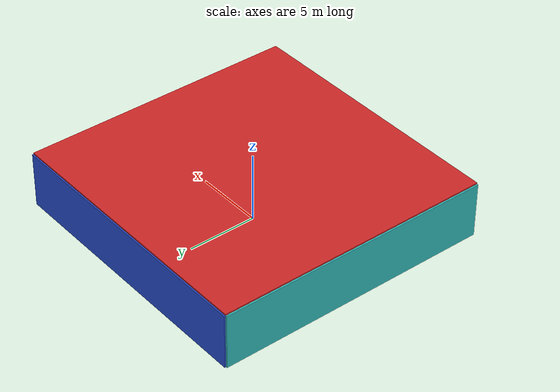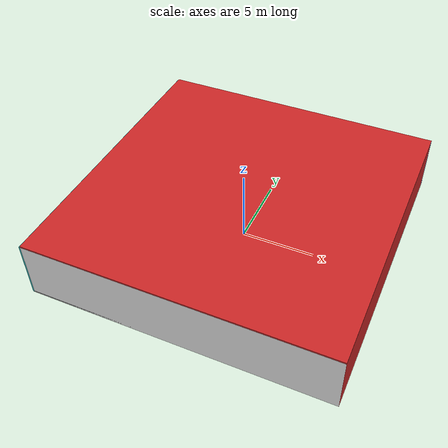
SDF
<sdf version="1.4">
 <world name="default">
  <physics type="ode">
   <max_step_size>0.001</max_step_size>
   <real_time_factor>1</real_time_factor>
   <real_time_update_rate>1000</real_time_update_rate>
   <gravity>0 0 -9.8</gravity>
  </physics>
  <scene><ambient>0.4 0.4 0.4 1</ambient><background>0.7 0.7 0.7 1</background><shadows>1</shadows></scene>
  <model name="Surrounding">
   <static>1</static>
   <link name="Ceiling">
    <collision name="Ceiling_Collision"><geometry><box><size>20 20 0.1</size></box></geometry></collision>
    <visual name="Ceiling_Visual">
     <geometry><box><size>20 20 0.1</size></box></geometry>
     <material>
      <script><uri>file://media/materials/scripts/gazebo.material</uri><name>Gazebo/RedGlow</name></script>
     </material>
    </visual>
    <pose>0 0 4.05 0 0 0</pose>
   </link>
   <link name="Wall_South">
    <collision name="Wall_South_Collision">
     <geometry><box><size>20 0 4</size></box></geometry>
     <pose>0 0 2 0 -0 0</pose>
    </collision>
    <visual name="Wall_South_Visual">
     <pose>0 0 2 0 -0 0</pose>
     <geometry><box><size>20 0 4</size></box></geometry>
     <material>
      <script><uri>file://media/materials/scripts/gazebo.material</uri><name>Gazebo/WhiteGlow</name></script>
     </material>
    </visual>
    <velocity_decay><linear>0</linear><angular>0</angular></velocity_decay>
    <pose>0 -10 0 0 -0 0</pose>
   </link>
   <link name="Wall_East">
    <collision name="Wall_21_Collision">
     <geometry><box><size>20 0 4</size></box></geometry>
     <pose>0 0 2 0 -0 0</pose>
    </collision>
    <visual name="Wall_21_Visual">
     <pose>0 0 2 0 -0 0</pose>
     <geometry><box><size>20 0 4</size></box></geometry>
     <material>
      <script><uri>file://media/materials/scripts/gazebo.material</uri><name>Gazebo/RedBright</name></script>
     </material>
    </visual>
    <velocity_decay><linear>0</linear><angular>0</angular></velocity_decay>
    <pose>10 0 0 0 -0 1.5708</pose>
   </link>
   <link name="Wall_North">
    <collision name="Wall_22_Collision">
     <geometry><box><size>20 0.2 4</size></box></geometry>
     <pose>0 0 2 0 -0 0</pose>
    </collision>
    <visual name="Wall_22_Visual">
     <pose>0 0 2 0 -0 0</pose>
     <geometry><box><size>20 0.2 4</size></box></geometry>
     <material>
      <script><uri>file://media/materials/scripts/gazebo.material</uri><name>Gazebo/Blue</name></script>
     </material>
    </visual>
    <velocity_decay><linear>0</linear><angular>0</angular></velocity_decay>
    <pose>0 10 0 0 -0 0</pose>
   </link>
   <link name="Wall_West">
    <collision name="Wall_23_Collision">
     <geometry><box><size>20 0.2 4</size></box></geometry>
     <pose>0 0 2 0 -0 0</pose>
    </collision>
    <visual name="Wall_23_Visual">
     <pose>0 0 2 0 -0 0</pose>
     <geometry><box><size>20 0.2 4</size></box></geometry>
     <material>
      <script>
       <uri>file://media/materials/scripts/gazebo.material</uri>
       <name>Gazebo/TurquoiseGlowOutline</name>
      </script>
     </material>
    </visual>
    <velocity_decay><linear>0</linear><angular>0</angular></velocity_decay>
    <pose>-10 0 0 0 0 -1.5708</pose>
   </link>
   <link name="Ground_link">
    <collision name="collision">
     <pose>0 0 .05 0 -0 0</pose>
     <geometry><box><size>20 20 0.1</size></box></geometry>
    </collision>
    <visual name="visual">
     <pose>0 0 .05 0 -0 0</pose>
     <geometry><box><size>20 20 0.1</size></box></geometry>
     <material>
      <script><uri>file://media/materials/scripts/gazebo.material</uri><name>Gazebo/GreyGradientSky</name></script>
     </material>
    </visual>
   </link>
   <static>1</static>
  </model>
  <spherical_coordinates>
   <surface_model>EARTH_WGS84</surface_model>
   <latitude_deg>0</latitude_deg>
   <longitude_deg>0</longitude_deg>
   <elevation>0</elevation>
   <heading_deg>0</heading_deg>
  </spherical_coordinates>
  <light name="lightball_0" type="diffuse">
   <diffuse>0.8 0.8 0.8 1</diffuse>
   <specular>0.2 0.2 0.2 1</specular>
   <attenuation>
    <range>100</range>
    <constant>0.7</constant>
    <linear>0.01</linear>
    <quadratic>0.001</quadratic>
   </attenuation>
   <direction>-0.5 0.1 -0.9</direction>
   <pose>5.69321603852 -8.11510957811 3.80584029041 0 0 0</pose>
  </light>
  <light name="lightball_1" type="diffuse">
   <diffuse>0.8 0.8 0.8 1</diffuse>
   <specular>0.2 0.2 0.2 1</specular>
   <attenuation>
    <range>100</range>
    <constant>0.7</constant>
    <linear>0.01</linear>
    <quadratic>0.001</quadratic>
   </attenuation>
   <direction>-0.5 0.1 -0.9</direction>
   <pose>-8.90523223207 2.57697849574 1.45794988424 0 0 0</pose>
  </light>
  <light name="lightball_2" type="diffuse">
   <diffuse>0.8 0.8 0.8 1</diffuse>
   <specular>0.2 0.2 0.2 1</specular>
   <attenuation>
    <range>100</range>
    <constant>0.7</constant>
    <linear>0.01</linear>
    <quadratic>0.001</quadratic>
   </attenuation>
   <direction>-0.5 0.1 -0.9</direction>
   <pose>-5.51007205565 -2.42141045808 1.5772737646 0 0 0</pose>
  </light>
  <include><uri>model://table</uri><pose>-7.87058886358 -4.69857739701 0 0 0 2.20262688205</pose></include>
  <include>
   <uri>model://construction_cone</uri>
   <pose>-1.53994135389 -6.94279119623 0 0 0 2.61609663103</pose>
  </include>
  <include>
   <uri>model://robocup_3Dsim_goal</uri>
   <pose>2.1604181653 7.40426991621 0 0 0 0.106693560251</pose>
  </include>
  <include><uri>model://cabinet</uri><pose>7.05652437144 -7.4689224626 0 0 0 0.636040925777</pose></include>
  <include><uri>model://cabinet</uri><pose>7.12029603257 4.46563903408 0 0 0 1.96774971538</pose></include>
 </world>
</sdf>

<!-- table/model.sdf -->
<sdf version="1.5">
  <model name="table">
    <static>true</static>
    <link name="link">
      <collision name="surface">
        <pose>0 0 1.0 0 0 0</pose>
        <geometry>
          <box>
            <size>1.5 0.8 0.03</size>
          </box>
        </geometry>
        <surface>
          <friction>
            <ode>
              <mu>0.6</mu>
              <mu2>0.6</mu2>
            </ode>
          </friction>
        </surface>
      </collision>
      <visual name="visual1">
        <pose>0 0 1.0 0 0 0</pose>
        <geometry>
          <box>
            <size>1.5 0.8 0.03</size>
          </box>
        </geometry>
        <material>
          <script>
            <uri>model://media/materials/scripts/gazebo.material</uri>
            <name>Gazebo/Wood</name>
          </script>
        </material>
      </visual>
      <collision name="front_left_leg">
        <pose>0.68 0.38 0.5 0 0 0</pose>
        <geometry>
          <cylinder>
            <radius>0.02</radius>
            <length>1.0</length>
          </cylinder>
        </geometry>
      </collision>
      <visual name="front_left_leg">
        <pose>0.68 0.38 0.5 0 0 0</pose>
        <geometry>
          <cylinder>
            <radius>0.02</radius>
            <length>1.0</length>
          </cylinder>
        </geometry>
        <material>
          <script>
            <uri>model://media/materials/scripts/gazebo.material</uri>
            <name>Gazebo/Grey</name>
          </script>
        </material>
      </visual>
      <collision name="front_right_leg">
        <pose>0.68 -0.38 0.5 0 0 0</pose>
        <geometry>
          <cylinder>
            <radius>0.02</radius>
            <length>1.0</length>
          </cylinder>
        </geometry>
      </collision>
      <visual name="front_right_leg">
        <pose>0.68 -0.38 0.5 0 0 0</pose>
        <geometry>
          <cylinder>
            <radius>0.02</radius>
            <length>1.0</length>
          </cylinder>
        </geometry>
        <material>
          <script>
            <uri>model://media/materials/scripts/gazebo.material</uri>
            <name>Gazebo/Grey</name>
          </script>
        </material>
      </visual>
      <collision name="back_right_leg">
        <pose>-0.68 -0.38 0.5 0 0 0</pose>
        <geometry>
          <cylinder>
            <radius>0.02</radius>
            <length>1.0</length>
          </cylinder>
        </geometry>
      </collision>
      <visual name="back_right_leg">
        <pose>-0.68 -0.38 0.5 0 0 0</pose>
        <geometry>
          <cylinder>
            <radius>0.02</radius>
            <length>1.0</length>
          </cylinder>
        </geometry>
        <material>
          <script>
            <uri>model://media/materials/scripts/gazebo.material</uri>
            <name>Gazebo/Grey</name>
          </script>
        </material>
      </visual>
      <collision name="back_left_leg">
        <pose>-0.68 0.38 0.5 0 0 0</pose>
        <geometry>
          <cylinder>
            <radius>0.02</radius>
            <length>1.0</length>
          </cylinder>
        </geometry>
      </collision>
      <visual name="back_left_leg">
        <pose>-0.68 0.38 0.5 0 0 0</pose>
        <geometry>
          <cylinder>
            <radius>0.02</radius>
            <length>1.0</length>
          </cylinder>
        </geometry>
        <material>
          <script>
            <uri>model://media/materials/scripts/gazebo.material</uri>
            <name>Gazebo/Grey</name>
          </script>
        </material>
      </visual>
    </link>
  </model>
</sdf>

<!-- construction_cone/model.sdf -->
<sdf version="1.5">
  <model name="Construction Cone">
    <link name="link">
      <collision name="collision">
        <geometry>
          <mesh>
            <scale>10 10 10</scale>
            <uri>file://isr-testbed/construction_cone/meshes/construction_cone.dae</uri>
          </mesh>
        </geometry>
      </collision>
      <visual name="visual">
        <geometry>
          <mesh>
            <scale>10 10 10</scale>
            <uri>file://isr-testbed/construction_cone/meshes/construction_cone.dae</uri>
          </mesh>
        </geometry>
      </visual>
    </link>
  </model>
</sdf>

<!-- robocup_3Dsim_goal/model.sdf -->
<sdf version="1.5">
  <model name="robocup_3d_goal">
    <static>true</static>
    <link name="left_post">
      <pose>0 1.05 0.45 0 0 0</pose>
      <collision name="collision">
        <geometry>
          <cylinder>
            <radius>0.05</radius>
            <length>0.9</length>
          </cylinder>
        </geometry>
      </collision>
      <visual name="visual">
        <geometry>
          <cylinder>
            <radius>0.05</radius>
            <length>0.9</length>
          </cylinder>
        </geometry>
        <material>
          <script>
            <uri>file://media/materials/scripts/gazebo.material</uri>
            <name>Gazebo/ZincYellow</name>
          </script>
        </material>
      </visual>
    </link>
    <link name="left_support_horiz_lower">
      <pose>0.30 1.05 0.01 0 0 0</pose>
      <collision name="collision">
        <geometry>
          <box>
            <size>0.50 0.02 0.02</size>
          </box>
        </geometry>
      </collision>
      <visual name="visual">
        <geometry>
          <box>
            <size>0.50 0.02 0.02</size>
          </box>
        </geometry>
        <material>
          <script>
            <uri>file://media/materials/scripts/gazebo.material</uri>
            <name>Gazebo/White</name>
          </script>
        </material>
      </visual>
    </link>
    <link name="left_support_horiz_upper">
      <pose>0.30 1.05 0.79 0 0 0</pose>
      <collision name="collision">
        <geometry>
          <box>
            <size>0.50 0.02 0.02</size>
          </box>
        </geometry>
      </collision>
      <visual name="visual">
        <geometry>
          <box>
            <size>0.50 0.02 0.02</size>
          </box>
        </geometry>
        <material>
          <script>
            <uri>file://media/materials/scripts/gazebo.material</uri>
            <name>Gazebo/White</name>
          </script>
        </material>
      </visual>
    </link>
    <link name="left_support_vertical">
      <pose>0.56 1.05 0.4 0 1.5708 0</pose>
      <collision name="collision">
        <geometry>
          <box>
            <size>0.80 0.02 0.02</size>
          </box>
        </geometry>
      </collision>
      <visual name="visual">
        <geometry>
          <box>
            <size>0.80 0.02 0.02</size>
          </box>
        </geometry>
        <material>
          <script>
            <uri>file://media/materials/scripts/gazebo.material</uri>
            <name>Gazebo/White</name>
          </script>
        </material>
      </visual>
    </link>
    <link name="right_support_horiz_lower">
      <pose>0.30 -1.05 0.01 0 0 0</pose>
      <collision name="collision">
        <geometry>
          <box>
            <size>0.50 0.02 0.02</size>
          </box>
        </geometry>
      </collision>
      <visual name="visual">
        <geometry>
          <box>
            <size>0.50 0.02 0.02</size>
          </box>
        </geometry>
        <material>
          <script>
            <uri>file://media/materials/scripts/gazebo.material</uri>
            <name>Gazebo/White</name>
          </script>
        </material>
      </visual>
    </link>
    <link name="right_support_horiz_upper">
      <pose>0.30 -1.05 0.79 0 0 0</pose>
      <collision name="collision">
        <geometry>
          <box>
            <size>0.50 0.02 0.02</size>
          </box>
        </geometry>
      </collision>
      <visual name="visual">
        <geometry>
          <box>
            <size>0.50 0.02 0.02</size>
          </box>
        </geometry>
        <material>
          <script>
            <uri>file://media/materials/scripts/gazebo.material</uri>
            <name>Gazebo/White</name>
          </script>
        </material>
      </visual>
    </link>
    <link name="right_support_vertical">
      <pose>0.56 -1.05 0.4 0 1.5708 0</pose>
      <collision name="collision">
        <geometry>
          <box>
            <size>0.80 0.02 0.02</size>
          </box>
        </geometry>
      </collision>
      <visual name="visual">
        <geometry>
          <box>
            <size>0.80 0.02 0.02</size>
          </box>
        </geometry>
        <material>
          <script>
            <uri>file://media/materials/scripts/gazebo.material</uri>
            <name>Gazebo/White</name>
          </script>
        </material>
      </visual>
    </link>
    <link name="center_support_horiz_lower">
      <pose>0.56 0 0.01 0 1.5708 0</pose>
      <collision name="collision">
        <geometry>
          <box>
            <size>0.02 2.08 0.02</size>
          </box>
        </geometry>
      </collision>
      <visual name="visual">
        <geometry>
          <box>
            <size>0.02 2.08 0.02</size>
          </box>
        </geometry>
        <material>
          <script>
            <uri>file://media/materials/scripts/gazebo.material</uri>
            <name>Gazebo/White</name>
          </script>
        </material>
      </visual>
    </link>
    <link name="center_support_horiz_upper">
      <pose>0.56 0 0.79 0 1.5708 0</pose>
      <collision name="collision">
        <geometry>
          <box>
            <size>0.02 2.08 0.02</size>
          </box>
        </geometry>
      </collision>
      <visual name="visual">
        <geometry>
          <box>
            <size>0.02 2.08 0.02</size>
          </box>
        </geometry>
        <material>
          <script>
            <uri>file://media/materials/scripts/gazebo.material</uri>
            <name>Gazebo/White</name>
          </script>
        </material>
      </visual>
    </link>
    <link name="right_post">
      <pose>0 -1.05 0.45 0 0 0</pose>
      <collision name="collision">
        <geometry>
          <cylinder>
            <radius>0.05</radius>
            <length>0.9</length>
          </cylinder>
        </geometry>
      </collision>
      <visual name="visual">
        <geometry>
          <cylinder>
            <radius>0.05</radius>
            <length>0.9</length>
          </cylinder>
        </geometry>
        <material>
          <script>
            <uri>file://media/materials/scripts/gazebo.material</uri>
            <name>Gazebo/ZincYellow</name>
          </script>
        </material>
      </visual>
    </link>
    <link name="crossbar">
      <pose>0 0 0.85 1.57 1.57 0</pose>
      <collision name="collision">
        <geometry>
          <cylinder>
            <radius>0.05</radius>
            <length>2.0</length>
          </cylinder>
        </geometry>
      </collision>
      <visual name="visual">
        <geometry>
          <cylinder>
            <radius>0.05</radius>
            <length>2.0</length>
          </cylinder>
        </geometry>
        <material>
          <script>
            <uri>file://media/materials/scripts/gazebo.material</uri>
            <name>Gazebo/ZincYellow</name>
          </script>
        </material>
      </visual>
    </link>
    <link name="center_net">
      <pose>0.56 0 0.40 0 0 0</pose>
      <collision name="collision">
        <geometry>
          <box>
            <size>0.01 2.1 0.80</size>
          </box>
        </geometry>
      </collision>
      <visual name="visual">
        <geometry>
          <box>
            <size>0.01 2.1 0.80</size>
          </box>
        </geometry>
        <material>
          <script>
            <uri>model://../model_source/models/robocup09_spl_field/materials/scripts/</uri>
            <uri>model://../model_source/models/robocup09_spl_field/materials/textures/</uri>
            <name>RoboCup/Net</name>
          </script>
        </material>
      </visual>
    </link>
    <link name="left_net">
      <pose>0.30 1.05 0.40 0 0 0</pose>
      <collision name="collision">
        <geometry>
          <box>
            <size>0.50 0.01 0.76</size>
          </box>
        </geometry>
      </collision>
      <visual name="visual">
        <geometry>
          <box>
            <size>0.50 0.01 0.76</size>
          </box>
        </geometry>
        <material>
          <script>
            <uri>model://../model_source/models/robocup09_spl_field/materials/scripts/</uri>
            <uri>model://../model_source/models/robocup09_spl_field/materials/textures/</uri>
            <name>RoboCup/Net</name>
          </script>
        </material>
      </visual>
    </link>
    <link name="right_net">
      <pose>0.30 -1.05 0.40 0 0 0</pose>
      <collision name="collision">
        <geometry>
          <box>
            <size>0.50 0.01 0.76</size>
          </box>
        </geometry>
      </collision>
      <visual name="visual">
        <geometry>
          <box>
            <size>0.50 0.01 0.76</size>
          </box>
        </geometry>
        <material>
          <script>
            <uri>model://../model_source/models/robocup09_spl_field/materials/scripts/</uri>
            <uri>model://../model_source/models/robocup09_spl_field/materials/textures/</uri>
            <name>RoboCup/Net</name>
          </script>
        </material>
      </visual>
    </link>
  </model>
</sdf>

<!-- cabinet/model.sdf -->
<sdf version="1.5">
  <model name="cabinet">
    <static>true</static>
    <link name="cabinet_bottom_plate">
      <inertial>
        <pose>0 0 -1 0 0 0</pose>
        <inertia>
          <ixx>2.050000</ixx>
          <ixy>0</ixy>
          <ixz>0</ixz>
          <iyy>2.050000</iyy>
          <iyz>0</iyz>
          <izz>2.050000</izz>
        </inertia>
        <mass>25.000000</mass>
      </inertial>
      <collision name="cabinet_bottom_plate_geom">
        <pose>0 0 0.010000 0 0 0</pose>
        <geometry>
          <box>
            <size>0.450000 0.450000 0.020000</size>
          </box>
        </geometry>
      </collision>
      <visual name="cabinet_bottom_plate_geom_visual">
        <pose>0 0 0.010000 0 0 0</pose>
        <geometry>
          <box>
            <size>0.450000 0.450000 0.020000</size>
          </box>
        </geometry>
        <material>
          <script>
            <uri>model://media/materials/scripts/gazebo.material</uri>
            <name>Gazebo/Wood</name>
          </script>
        </material>
      </visual>
      <collision name="cabinet_bottom_plate_geom_cabinet_back_plate">
        <pose>0.235000 0 0.510000 0 0 0</pose>
        <geometry>
          <box>
            <size>0.020000 0.450000 1.020000</size>
          </box>
        </geometry>
      </collision>
      <visual name="cabinet_bottom_plate_geom_cabinet_back_plate_visual">
        <pose>0.235000 0 0.510000 0 0 0</pose>
        <geometry>
          <box>
            <size>0.020000 0.450000 1.020000</size>
          </box>
        </geometry>
        <material>
          <script>
            <uri>model://media/materials/scripts/gazebo.material</uri>
            <name>Gazebo/Wood</name>
          </script>
        </material>
      </visual>
      <collision name="cabinet_bottom_plate_geom_cabinet_left_plate">
        <pose>0 0.235000 0.510000 0 0 0</pose>
        <geometry>
          <box>
            <size>0.450000 0.020000 1.020000</size>
          </box>
        </geometry>
      </collision>
      <visual name="cabinet_bottom_plate_geom_cabinet_left_plate_visual">
        <pose>0 0.235000 0.510000 0 0 0</pose>
        <geometry>
          <box>
            <size>0.450000 0.020000 1.020000</size>
          </box>
        </geometry>
        <material>
          <script>
            <uri>model://media/materials/scripts/gazebo.material</uri>
            <name>Gazebo/Wood</name>
          </script>
        </material>
      </visual>
      <collision name="cabinet_bottom_plate_geom_cabinet_middle_plate">
        <pose>0 0 0.510000 0 0 0</pose>
        <geometry>
          <box>
            <size>0.450000 0.450000 0.020000</size>
          </box>
        </geometry>
      </collision>
      <visual name="cabinet_bottom_plate_geom_cabinet_middle_plate_visual">
        <pose>0 0 0.510000 0 0 0</pose>
        <geometry>
          <box>
            <size>0.450000 0.450000 0.020000</size>
          </box>
        </geometry>
        <material>
          <script>
            <uri>model://media/materials/scripts/gazebo.material</uri>
            <name>Gazebo/Wood</name>
          </script>
        </material>
      </visual>
      <collision name="cabinet_bottom_plate_geom_cabinet_right_plate">
        <pose>0 -0.235000 0.510000 0 0 0</pose>
        <geometry>
          <box>
            <size>0.450000 0.020000 1.020000</size>
          </box>
        </geometry>
      </collision>
      <visual name="cabinet_bottom_plate_geom_cabinet_right_plate_visual">
        <pose>0 -0.235000 0.510000 0 0 0</pose>
        <geometry>
          <box>
            <size>0.450000 0.020000 1.020000</size>
          </box>
        </geometry>
        <material>
          <script>
            <uri>model://media/materials/scripts/gazebo.material</uri>
            <name>Gazebo/Wood</name>
          </script>
        </material>
      </visual>
      <collision name="cabinet_bottom_plate_geom_cabinet_top_plate">
        <pose>0 0 1.010000 0 0 0</pose>
        <geometry>
          <box>
            <size>0.450000 0.450000 0.020000</size>
          </box>
        </geometry>
      </collision>
      <visual name="cabinet_bottom_plate_geom_cabinet_top_plate_visual">
        <pose>0 0 1.010000 0 0 0</pose>
        <geometry>
          <box>
            <size>0.450000 0.450000 0.020000</size>
          </box>
        </geometry>
        <material>
          <script>
            <uri>model://media/materials/scripts/gazebo.material</uri>
            <name>Gazebo/Wood</name>
          </script>
        </material>
      </visual>
    </link>
  </model>
</sdf>
